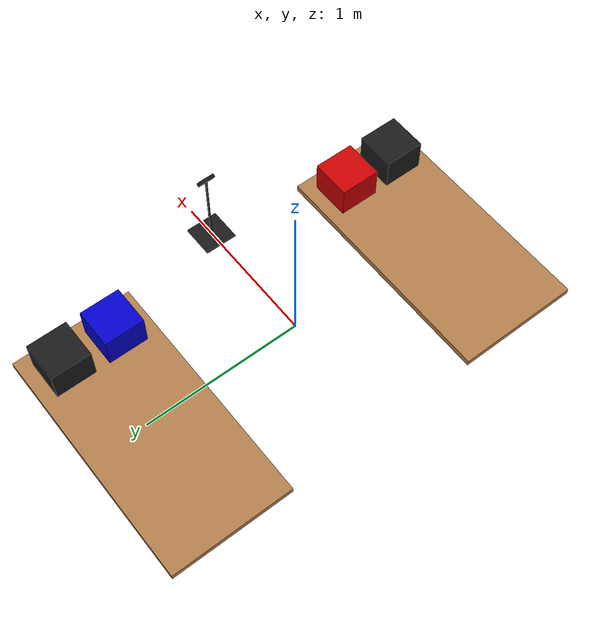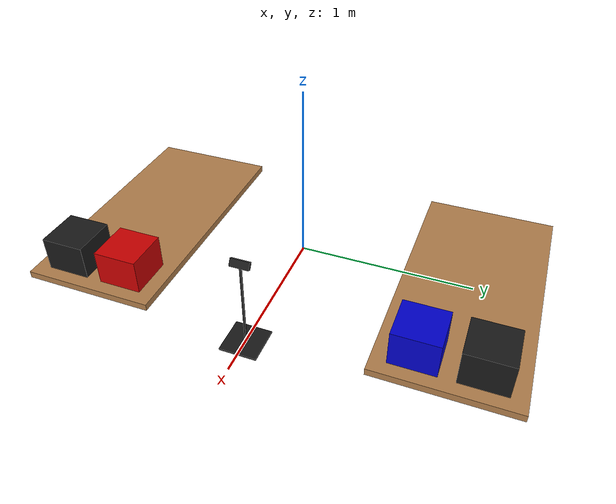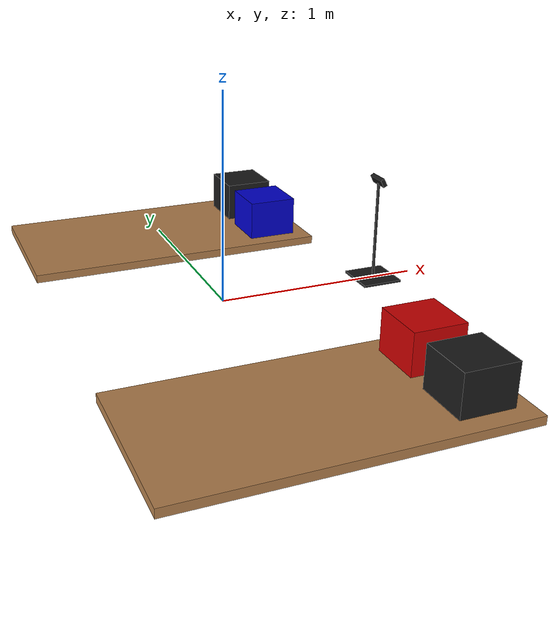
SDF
<?xml version="1.0" ?>
<sdf version="1.4">
  <world name="default">
    <include>
      <uri>model://sun</uri>
    </include>
    <gui>
        <camera name="user_camera">
          <pose>2.5 -1.64 2.18 0 .6 2.5</pose>
        </camera>
    </gui>
    <scene>
      <ambient>0.4 0.4 0.4 1</ambient>
      <background>0.7 0.7 0.7 1</background>
      <!-- modified (shadows) to reduce computation effort, default : true -->
      <shadows>false</shadows>
    </scene>

    <physics type="ode">
      <real_time_update_rate>1000</real_time_update_rate>
      <max_step_size>0.001</max_step_size>
     </physics>

     <model name='tableright'>
       <pose> 0 .99 0 0 0 0</pose>
       <link name='tabletop'>
         <self_collide>0</self_collide>
         <enable_wind>0</enable_wind>
         <kinematic>0</kinematic>
         <pose>0 0 0 0 -0 0</pose>
         <gravity>1</gravity>
         <inertial>
           <mass>1</mass>
           <pose>0 0 0 0 -0 0</pose>
           <inertia>
             <ixx>1</ixx>
             <ixy>0</ixy>
             <ixz>0</ixz>
             <iyy>1</iyy>
             <iyz>0</iyz>
             <izz>1</izz>
           </inertia>
         </inertial>
         <visual name='scoring'>
           <pose>.562 -.169 .1 0 0 0</pose>
           <geometry>
             <box>
               <size>.25 .25 .2</size>
             </box>
           </geometry>
           <material>
             <ambient>0 0 .8 1</ambient>
             <diffuse>0 0 .8 1</diffuse>
             <specular>0 0 .8 1</specular>
             <emissive>0 0 0 0</emissive>
           </material>
           <transparency>0</transparency>
           <cast_shadows>1</cast_shadows>
         </visual>
         <visual name='static'>
           <pose>.562 .169 .1 0 0 0</pose>
           <geometry>
             <box>
               <size>.25 .25 .2</size>
             </box>
           </geometry>
           <material>
             <ambient>.1 .1 .1 1</ambient>
             <diffuse>.1 .1 .1 1</diffuse>
             <specular>.1 .1 .1 1</specular>
             <emissive>0 0 0 0</emissive>
           </material>
           <transparency>0</transparency>
           <cast_shadows>1</cast_shadows>
         </visual>         <visual name='visual1'>
           <pose>0 0 -.02 0 0 0</pose>
           <geometry>
             <box>
               <size>1.524 0.762 0.04</size>
             </box>
           </geometry>
           <material>
             <script>
               <uri>file://media/materials/scripts/gazebo.material</uri>
               <name>Gazebo/Wood</name>
             </script>
             <shader type='pixel'>
               <normal_map>__default__</normal_map>
             </shader>
           </material>
           <transparency>0</transparency>
           <cast_shadows>1</cast_shadows>
         </visual>
         <collision name='surface'>
           <laser_retro>0</laser_retro>
           <max_contacts>10</max_contacts>
           <pose>0 0 -.02 0 0 0</pose>
           <geometry>
             <box>
               <size>1.524 0.762 0.04</size>
             </box>
           </geometry>
           <surface>
             <friction>
               <ode>
                 <mu>0.6</mu>
                 <mu2>0.6</mu2>
                 <fdir1>0 0 0</fdir1>
                 <slip1>0</slip1>
                 <slip2>0</slip2>
               </ode>
               <torsional>
                 <coefficient>1</coefficient>
                 <patch_radius>0</patch_radius>
                 <surface_radius>0</surface_radius>
                 <use_patch_radius>1</use_patch_radius>
                 <ode>
                   <slip>0</slip>
                 </ode>
               </torsional>
             </friction>
             <bounce>
               <restitution_coefficient>0</restitution_coefficient>
               <threshold>1e+06</threshold>
             </bounce>
             <contact>
               <collide_without_contact>0</collide_without_contact>
               <collide_without_contact_bitmask>1</collide_without_contact_bitmask>
               <collide_bitmask>1</collide_bitmask>
               <ode>
                 <soft_cfm>0</soft_cfm>
                 <soft_erp>0.2</soft_erp>
                 <kp>1e+13</kp>
                 <kd>1</kd>
                 <max_vel>0.01</max_vel>
                 <min_depth>0</min_depth>
               </ode>
               <bullet>
                 <split_impulse>1</split_impulse>
                 <split_impulse_penetration_threshold>-0.01</split_impulse_penetration_threshold>
                 <soft_cfm>0</soft_cfm>
                 <soft_erp>0.2</soft_erp>
                 <kp>1e+13</kp>
                 <kd>1</kd>
               </bullet>
             </contact>
           </surface>
         </collision>

         <collision name='staticplatform'>
           <laser_retro>0</laser_retro>
           <max_contacts>10</max_contacts>
           <pose>.562 .169 .1 0 0 0</pose>
           <geometry>
             <box>
               <size>.25 .25 .2</size>
             </box>
           </geometry>
           <surface>
             <friction>
               <ode>
                 <mu>0.6</mu>
                 <mu2>0.6</mu2>
                 <fdir1>0 0 0</fdir1>
                 <slip1>0</slip1>
                 <slip2>0</slip2>
               </ode>
               <torsional>
                 <coefficient>1</coefficient>
                 <patch_radius>0</patch_radius>
                 <surface_radius>0</surface_radius>
                 <use_patch_radius>1</use_patch_radius>
                 <ode>
                   <slip>0</slip>
                 </ode>
               </torsional>
             </friction>
             <bounce>
               <restitution_coefficient>0</restitution_coefficient>
               <threshold>1e+06</threshold>
             </bounce>
             <contact>
               <collide_without_contact>0</collide_without_contact>
               <collide_without_contact_bitmask>1</collide_without_contact_bitmask>
               <collide_bitmask>1</collide_bitmask>
               <ode>
                 <soft_cfm>0</soft_cfm>
                 <soft_erp>0.2</soft_erp>
                 <kp>1e+13</kp>
                 <kd>1</kd>
                 <max_vel>0.01</max_vel>
                 <min_depth>0</min_depth>
               </ode>
               <bullet>
                 <split_impulse>1</split_impulse>
                 <split_impulse_penetration_threshold>-0.01</split_impulse_penetration_threshold>
                 <soft_cfm>0</soft_cfm>
                 <soft_erp>0.2</soft_erp>
                 <kp>1e+13</kp>
                 <kd>1</kd>
               </bullet>
             </contact>
           </surface>
         </collision>
         <collision name='scoringplatform'>
           <laser_retro>0</laser_retro>
           <max_contacts>10</max_contacts>
           <pose>.562 -.169 .1 0 0 0</pose>
           <geometry>
             <box>
               <size>.25 .25 .2</size>
             </box>
           </geometry>
           <surface>
             <friction>
               <ode>
                 <mu>0.6</mu>
                 <mu2>0.6</mu2>
                 <fdir1>0 0 0</fdir1>
                 <slip1>0</slip1>
                 <slip2>0</slip2>
               </ode>
               <torsional>
                 <coefficient>1</coefficient>
                 <patch_radius>0</patch_radius>
                 <surface_radius>0</surface_radius>
                 <use_patch_radius>1</use_patch_radius>
                 <ode>
                   <slip>0</slip>
                 </ode>
               </torsional>
             </friction>
             <bounce>
               <restitution_coefficient>0</restitution_coefficient>
               <threshold>1e+06</threshold>
             </bounce>
             <contact>
               <collide_without_contact>0</collide_without_contact>
               <collide_without_contact_bitmask>1</collide_without_contact_bitmask>
               <collide_bitmask>1</collide_bitmask>
               <ode>
                 <soft_cfm>0</soft_cfm>
                 <soft_erp>0.2</soft_erp>
                 <kp>1e+13</kp>
                 <kd>1</kd>
                 <max_vel>0.01</max_vel>
                 <min_depth>0</min_depth>
               </ode>
               <bullet>
                 <split_impulse>1</split_impulse>
                 <split_impulse_penetration_threshold>-0.01</split_impulse_penetration_threshold>
                 <soft_cfm>0</soft_cfm>
                 <soft_erp>0.2</soft_erp>
                 <kp>1e+13</kp>
                 <kd>1</kd>
               </bullet>
             </contact>
           </surface>
         </collision>
       </link>
       <static>1</static>
       <allow_auto_disable>1</allow_auto_disable>
     </model>

     <model name='tableleft'>
       <pose> 0 -.99 0 0 0 0</pose>
       <link name='link'>
         <self_collide>0</self_collide>
         <enable_wind>0</enable_wind>
         <kinematic>0</kinematic>
         <pose>0 0 0 0 -0 0</pose>
         <gravity>1</gravity>
         <inertial>
           <mass>1</mass>
           <pose>0 0 0 0 -0 0</pose>
           <inertia>
             <ixx>1</ixx>
             <ixy>0</ixy>
             <ixz>0</ixz>
             <iyy>1</iyy>
             <iyz>0</iyz>
             <izz>1</izz>
           </inertia>
         </inertial>
         <visual name='scoring'>
           <pose>.562 -.169 .1 0 0 0</pose>
           <geometry>
             <box>
               <size>.25 .25 .2</size>
             </box>
           </geometry>
           <material>
             <ambient>.1 .1 .1 1</ambient>
             <diffuse>.1 .1 .1 1</diffuse>
             <specular>.1 .1 .1 1</specular>
             <emissive>0 0 0 0</emissive>
           </material>
           <transparency>0</transparency>
           <cast_shadows>1</cast_shadows>
         </visual>
         <visual name='static'>
           <pose>.562 .169 .1 0 0 0</pose>
           <geometry>
             <box>
               <size>.25 .25 .2</size>
             </box>
           </geometry>
           <material>
             <ambient>.8 0 0 1</ambient>
             <diffuse>.8 0 0 1</diffuse>
             <specular>.8 0 0 1</specular>
             <emissive>0 0 0 0</emissive>
           </material>
           <transparency>0</transparency>
           <cast_shadows>1</cast_shadows>
         </visual>         <visual name='visual1'>
           <pose>0 0 -.02 0 0 0</pose>
           <geometry>
             <box>
               <size>1.524 0.762 0.04</size>
             </box>
           </geometry>
           <material>
             <script>
               <uri>file://media/materials/scripts/gazebo.material</uri>
               <name>Gazebo/Wood</name>
             </script>
             <shader type='pixel'>
               <normal_map>__default__</normal_map>
             </shader>
           </material>
           <transparency>0</transparency>
           <cast_shadows>1</cast_shadows>
         </visual>
         <collision name='surface'>
           <laser_retro>0</laser_retro>
           <max_contacts>10</max_contacts>
           <pose>0 0 -.02 0 0 0</pose>
           <geometry>
             <box>
               <size>1.524 0.762 0.04</size>
             </box>
           </geometry>
           <surface>
             <friction>
               <ode>
                 <mu>0.6</mu>
                 <mu2>0.6</mu2>
                 <fdir1>0 0 0</fdir1>
                 <slip1>0</slip1>
                 <slip2>0</slip2>
               </ode>
               <torsional>
                 <coefficient>1</coefficient>
                 <patch_radius>0</patch_radius>
                 <surface_radius>0</surface_radius>
                 <use_patch_radius>1</use_patch_radius>
                 <ode>
                   <slip>0</slip>
                 </ode>
               </torsional>
             </friction>
             <bounce>
               <restitution_coefficient>0</restitution_coefficient>
               <threshold>1e+06</threshold>
             </bounce>
             <contact>
               <collide_without_contact>0</collide_without_contact>
               <collide_without_contact_bitmask>1</collide_without_contact_bitmask>
               <collide_bitmask>1</collide_bitmask>
               <ode>
                 <soft_cfm>0</soft_cfm>
                 <soft_erp>0.2</soft_erp>
                 <kp>1e+13</kp>
                 <kd>1</kd>
                 <max_vel>0.01</max_vel>
                 <min_depth>0</min_depth>
               </ode>
               <bullet>
                 <split_impulse>1</split_impulse>
                 <split_impulse_penetration_threshold>-0.01</split_impulse_penetration_threshold>
                 <soft_cfm>0</soft_cfm>
                 <soft_erp>0.2</soft_erp>
                 <kp>1e+13</kp>
                 <kd>1</kd>
               </bullet>
             </contact>
           </surface>
         </collision>

         <collision name='staticplatform'>
           <laser_retro>0</laser_retro>
           <max_contacts>10</max_contacts>
           <pose>.562 .169 .1 0 0 0</pose>
           <geometry>
             <box>
               <size>.25 .25 .2</size>
             </box>
           </geometry>
           <surface>
             <friction>
               <ode>
                 <mu>0.6</mu>
                 <mu2>0.6</mu2>
                 <fdir1>0 0 0</fdir1>
                 <slip1>0</slip1>
                 <slip2>0</slip2>
               </ode>
               <torsional>
                 <coefficient>1</coefficient>
                 <patch_radius>0</patch_radius>
                 <surface_radius>0</surface_radius>
                 <use_patch_radius>1</use_patch_radius>
                 <ode>
                   <slip>0</slip>
                 </ode>
               </torsional>
             </friction>
             <bounce>
               <restitution_coefficient>0</restitution_coefficient>
               <threshold>1e+06</threshold>
             </bounce>
             <contact>
               <collide_without_contact>0</collide_without_contact>
               <collide_without_contact_bitmask>1</collide_without_contact_bitmask>
               <collide_bitmask>1</collide_bitmask>
               <ode>
                 <soft_cfm>0</soft_cfm>
                 <soft_erp>0.2</soft_erp>
                 <kp>1e+13</kp>
                 <kd>1</kd>
                 <max_vel>0.01</max_vel>
                 <min_depth>0</min_depth>
               </ode>
               <bullet>
                 <split_impulse>1</split_impulse>
                 <split_impulse_penetration_threshold>-0.01</split_impulse_penetration_threshold>
                 <soft_cfm>0</soft_cfm>
                 <soft_erp>0.2</soft_erp>
                 <kp>1e+13</kp>
                 <kd>1</kd>
               </bullet>
             </contact>
           </surface>
         </collision>
         <collision name='scoringplatform'>
           <laser_retro>0</laser_retro>
           <max_contacts>10</max_contacts>
           <pose>.562 -.169 .1 0 0 0</pose>
           <geometry>
             <box>
               <size>.25 .25 .2</size>
             </box>
           </geometry>
           <surface>
             <friction>
               <ode>
                 <mu>0.6</mu>
                 <mu2>0.6</mu2>
                 <fdir1>0 0 0</fdir1>
                 <slip1>0</slip1>
                 <slip2>0</slip2>
               </ode>
               <torsional>
                 <coefficient>1</coefficient>
                 <patch_radius>0</patch_radius>
                 <surface_radius>0</surface_radius>
                 <use_patch_radius>1</use_patch_radius>
                 <ode>
                   <slip>0</slip>
                 </ode>
               </torsional>
             </friction>
             <bounce>
               <restitution_coefficient>0</restitution_coefficient>
               <threshold>1e+06</threshold>
             </bounce>
             <contact>
               <collide_without_contact>0</collide_without_contact>
               <collide_without_contact_bitmask>1</collide_without_contact_bitmask>
               <collide_bitmask>1</collide_bitmask>
               <ode>
                 <soft_cfm>0</soft_cfm>
                 <soft_erp>0.2</soft_erp>
                 <kp>1e+13</kp>
                 <kd>1</kd>
                 <max_vel>0.01</max_vel>
                 <min_depth>0</min_depth>
               </ode>
               <bullet>
                 <split_impulse>1</split_impulse>
                 <split_impulse_penetration_threshold>-0.01</split_impulse_penetration_threshold>
                 <soft_cfm>0</soft_cfm>
                 <soft_erp>0.2</soft_erp>
                 <kp>1e+13</kp>
                 <kd>1</kd>
               </bullet>
             </contact>
           </surface>
         </collision>
       </link>
       <static>1</static>
       <allow_auto_disable>1</allow_auto_disable>
     </model>

 <model name="kinect">
   <pose>0.8 0.0 0.5 0 0.5 3.1415</pose>
   <link name="depth_link">
     <inertial>
       <mass>0.1</mass>
     </inertial>
    <visual name="depth_visual">
        <geometry>
          <box>
            <size>0.02 0.1 0.04</size>
          </box>
        </geometry>
        <material>
          <ambient>.1 .1 .1 1</ambient>
          <diffuse>.1 .1 .1 1</diffuse>
          <specular>.1 .1 .1 1</specular>
          <emissive>0 0 0 0</emissive>
        </material>
    </visual>
  <sensor name="depth_camera" type="depth">
    <update_rate>20</update_rate>
    <camera>
      <horizontal_fov>1.047198</horizontal_fov>
      <image>
        <width>640</width>
        <height>480</height>
        <format>R8G8B8</format>
      </image>
      <clip>
        <near>0.05</near>
        <far>3</far>
      </clip>
    </camera>
    <plugin name="depth_controller" filename="libgazebo_ros_openni_kinect.so">
      <baseline>0.2</baseline>
      <alwaysOn>true</alwaysOn>
      <updateRate>1.0</updateRate>
      <cameraName>depth_ir</cameraName>
      <imageTopicName>/depth/color/image_raw</imageTopicName>
      <cameraInfoTopicName>/depth/color/camera_info</cameraInfoTopicName>
      <depthImageTopicName>/depth/depth/image_raw</depthImageTopicName>
      <depthImageInfoTopicName>/depth/depth/camera_info</depthImageInfoTopicName>
      <pointCloudTopicName>/depth/depth/points</pointCloudTopicName>
      <frameName>depth</frameName>
      <pointCloudCutoff>0.5</pointCloudCutoff>
      <pointCloudCutoffMax>3.0</pointCloudCutoffMax>
      <distortionK1>0.00000001</distortionK1>
      <distortionK2>0.00000001</distortionK2>
      <distortionK3>0.00000001</distortionK3>
      <distortionT1>0.00000001</distortionT1>
      <distortionT2>0.00000001</distortionT2>
      <CxPrime>0</CxPrime>
      <Cx>0</Cx>
      <Cy>0</Cy>
      <focalLength>0</focalLength>
      <hackBaseline>0</hackBaseline>
    </plugin>
  </sensor>
   </link>
   <static>1</static>
 </model>

  <model name="kinect_stand">
    <pose>0.8 0.0 0.25 0 0 0</pose>
    <link name="kinect_stand_link">
      <visual name="kinect_stand_visual">
          <geometry>
            <box>
              <size>0.01 0.01 0.5</size>
            </box>
          </geometry>
          <material>
            <ambient>.1 .1 .1 1</ambient>
            <diffuse>.1 .1 .1 1</diffuse>
            <specular>.1 .1 .1 1</specular>
            <emissive>0 0 0 0</emissive>
          </material>
      </visual>
    </link>
    <static>1</static>
  </model>

  <model name="kinect_foot">
    <pose>0.8 0.0 0.0 0 0 0</pose>
    <link name="kinect_foot_link">
      <visual name="kinect_stand_foot">
          <geometry>
            <box>
              <size>0.2 0.2 0.01</size>
            </box>
          </geometry>
          <material>
            <ambient>.1 .1 .1 1</ambient>
            <diffuse>.1 .1 .1 1</diffuse>
            <specular>.1 .1 .1 1</specular>
            <emissive>0 0 0 0</emissive>
          </material>
      </visual>
    </link>
    <static>1</static>
  </model>

  </world>
</sdf>
